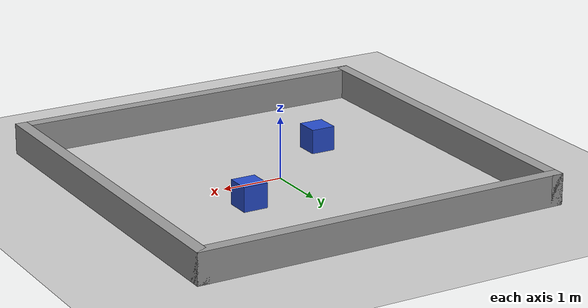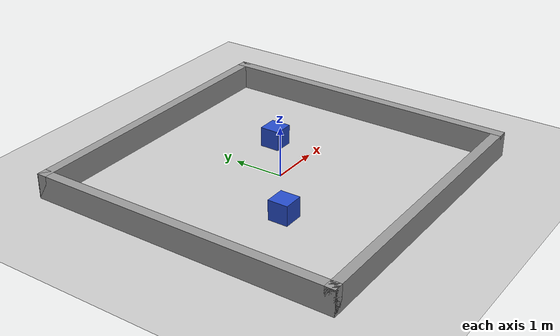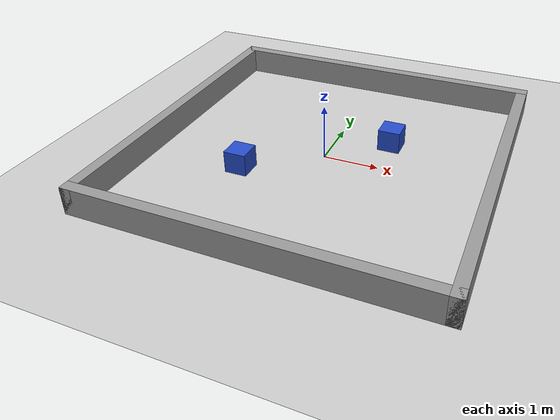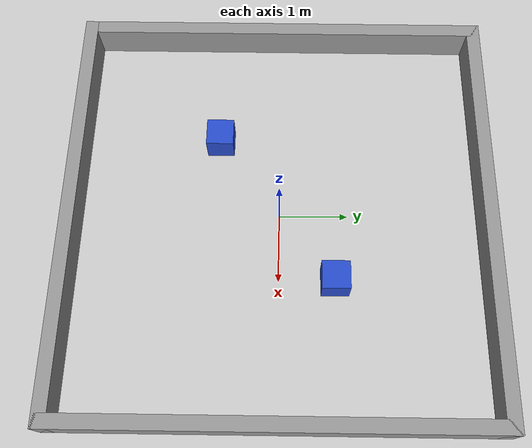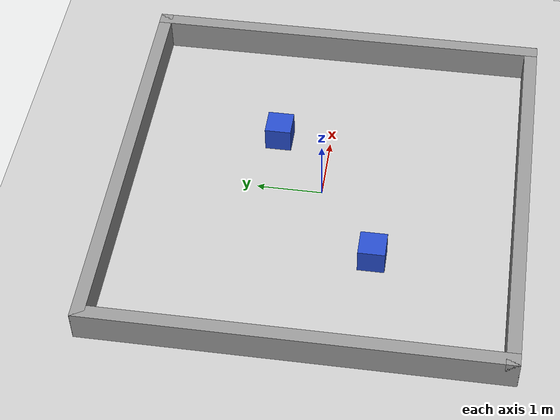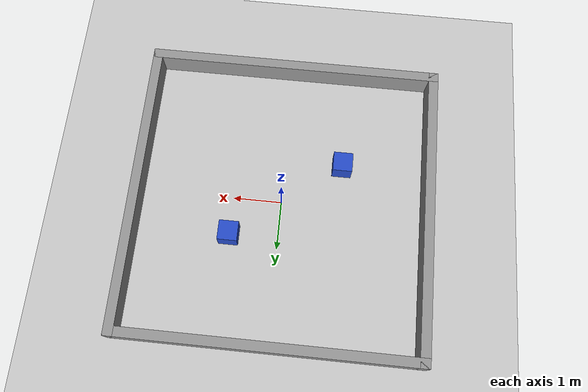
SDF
<?xml version="1.0"?>
<sdf version="1.6">
  <world name="beacon_room">

    <include>
      <uri>model://ground_plane</uri>
    </include>

    <include>
      <uri>model://sun</uri>
    </include>

    <physics type="ode">
      <real_time_update_rate>1000.0</real_time_update_rate>
      <max_step_size>0.001</max_step_size>
      <real_time_factor>1</real_time_factor>
      <ode>
        <solver>
          <type>quick</type>
          <iters>150</iters>
          <precon_iters>0</precon_iters>
          <sor>1.400000</sor>
          <use_dynamic_moi_rescaling>1</use_dynamic_moi_rescaling>
        </solver>
        <constraints>
          <cfm>0.00001</cfm>
          <erp>0.2</erp>
          <contact_max_correcting_vel>2000.000000</contact_max_correcting_vel>
          <contact_surface_layer>0.01000</contact_surface_layer>
        </constraints>
      </ode>
    </physics>

    <scene>
      <ambient>0.4 0.4 0.4 1</ambient>
      <background>0.7 0.7 0.7 1</background>
      <shadows>true</shadows>
    </scene>

    <gui fullscreen="0">
      <camera name="user_camera">
        <pose>0.0 -6.0 5.0 0 0.6 1.57</pose>
        <view_controller>orbit</view_controller>
      </camera>
    </gui>

    <!-- Walls: 0.2 m thick, 0.5 m high, centred on the 6 m square. -->
    <model name="wall_north">
      <static>true</static>
      <pose>0 3 0.25 0 0 0</pose>
      <link name="link">
        <collision name="collision">
          <geometry><box><size>6.2 0.2 0.5</size></box></geometry>
        </collision>
        <visual name="visual">
          <geometry><box><size>6.2 0.2 0.5</size></box></geometry>
          <material>
            <script>
              <uri>file://media/materials/scripts/gazebo.material</uri>
              <name>Gazebo/Grey</name>
            </script>
          </material>
        </visual>
      </link>
    </model>

    <model name="wall_south">
      <static>true</static>
      <pose>0 -3 0.25 0 0 0</pose>
      <link name="link">
        <collision name="collision">
          <geometry><box><size>6.2 0.2 0.5</size></box></geometry>
        </collision>
        <visual name="visual">
          <geometry><box><size>6.2 0.2 0.5</size></box></geometry>
          <material>
            <script>
              <uri>file://media/materials/scripts/gazebo.material</uri>
              <name>Gazebo/Grey</name>
            </script>
          </material>
        </visual>
      </link>
    </model>

    <model name="wall_east">
      <static>true</static>
      <pose>3 0 0.25 0 0 0</pose>
      <link name="link">
        <collision name="collision">
          <geometry><box><size>0.2 6.2 0.5</size></box></geometry>
        </collision>
        <visual name="visual">
          <geometry><box><size>0.2 6.2 0.5</size></box></geometry>
          <material>
            <script>
              <uri>file://media/materials/scripts/gazebo.material</uri>
              <name>Gazebo/Grey</name>
            </script>
          </material>
        </visual>
      </link>
    </model>

    <model name="wall_west">
      <static>true</static>
      <pose>-3 0 0.25 0 0 0</pose>
      <link name="link">
        <collision name="collision">
          <geometry><box><size>0.2 6.2 0.5</size></box></geometry>
        </collision>
        <visual name="visual">
          <geometry><box><size>0.2 6.2 0.5</size></box></geometry>
          <material>
            <script>
              <uri>file://media/materials/scripts/gazebo.material</uri>
              <name>Gazebo/Grey</name>
            </script>
          </material>
        </visual>
      </link>
    </model>

    <!-- Occlusion boxes: 0.4 m cubes. Positions match params.yaml. -->
    <model name="box_1">
      <static>true</static>
      <pose>1.0 0.8 0.2 0 0 0</pose>
      <link name="link">
        <collision name="collision">
          <geometry><box><size>0.4 0.4 0.4</size></box></geometry>
        </collision>
        <visual name="visual">
          <geometry><box><size>0.4 0.4 0.4</size></box></geometry>
          <material>
            <script>
              <uri>file://media/materials/scripts/gazebo.material</uri>
              <name>Gazebo/Blue</name>
            </script>
          </material>
        </visual>
      </link>
    </model>

    <model name="box_2">
      <static>true</static>
      <pose>-1.2 -0.9 0.2 0 0 0</pose>
      <link name="link">
        <collision name="collision">
          <geometry><box><size>0.4 0.4 0.4</size></box></geometry>
        </collision>
        <visual name="visual">
          <geometry><box><size>0.4 0.4 0.4</size></box></geometry>
          <material>
            <script>
              <uri>file://media/materials/scripts/gazebo.material</uri>
              <name>Gazebo/Blue</name>
            </script>
          </material>
        </visual>
      </link>
    </model>

  </world>
</sdf>
